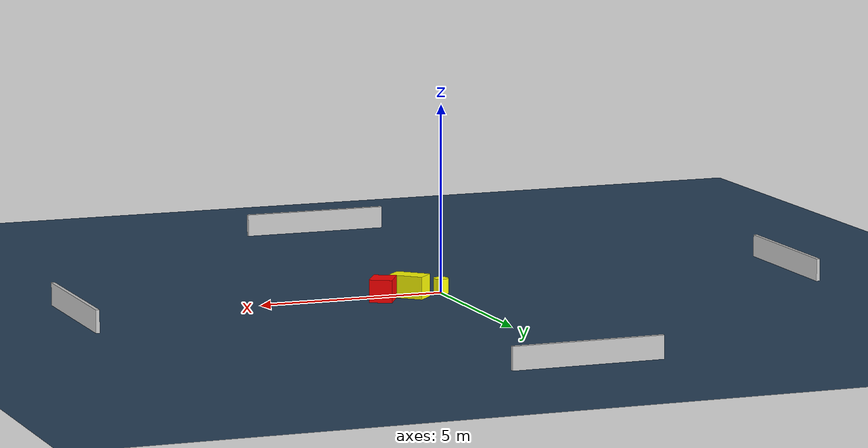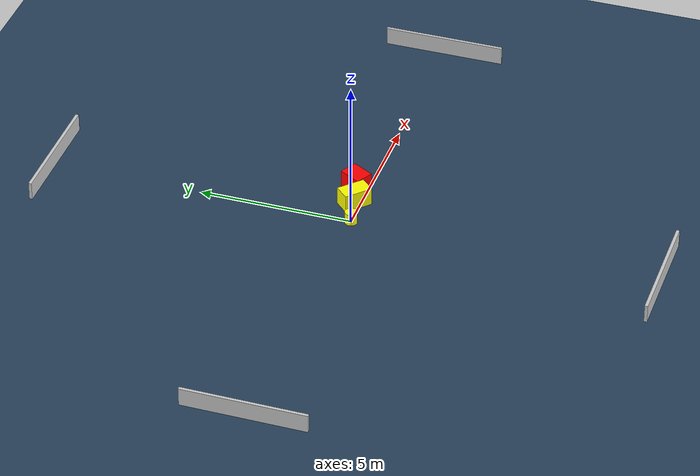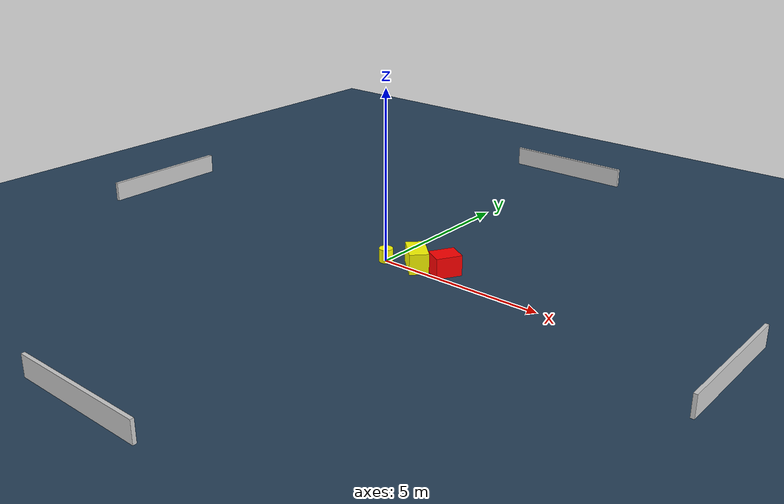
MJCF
<?xml version="1.0" ?>
<mujoco model="generated_environment">
  <option timestep="0.01" integrator="RK4" cone="elliptic"/>
  <default>
    <geom density="1"/>
  </default>
  <asset>
    <texture builtin="gradient" height="3072" name="skybox" rgb1="0.3 0.5 0.7" rgb2="0 0 0" type="skybox" width="512"/>
    <texture builtin="checker" height="300" name="groundplane" rgb1="0.2 0.3 0.4" rgb2="0.1 0.2 0.3" type="2d" width="300"/>
    <material name="groundplane" reflectance="0.2" texrepeat="5 5" texture="groundplane"/>
  </asset>
  <worldbody>
    <light dir="0 0 -1" directional="true" pos="0 0 1.5"/>
    <geom condim="3" friction="0.5 0.005 0.001" material="groundplane" name="floor" pos="0 0 0" size="0 0 0.05" type="plane"/>
    <body name="walls">
      <geom name="wall_1" condim="4" pos="-10.0 0.0 0.3" rgba="0.800000011920929 0.800000011920929 0.800000011920929 1.0" size="0.05 2.0 0.3" type="box"/>
      <geom name="wall_2" condim="4" pos="10.0 0.0 0.3" rgba="0.800000011920929 0.800000011920929 0.800000011920929 1.0" size="0.05 2.0 0.3" type="box"/>
      <geom name="wall_3" condim="4" pos="0.0 -10.0 0.3" rgba="0.800000011920929 0.800000011920929 0.800000011920929 1.0" size="2.0 0.05 0.3" type="box"/>
      <geom name="wall_4" condim="4" pos="0.0 10.0 0.3" rgba="0.800000011920929 0.800000011920929 0.800000011920929 1.0" size="2.0 0.05 0.3" type="box"/>
    </body>
    <body name="robot">
      <joint name="joint_x" type="slide" pos="0 0 0" axis="1 0 0"/>
      <joint name="joint_y" type="slide" pos="0 0 0" axis="0 1 0"/>
      <geom name="robot" type="cylinder" pos="0.0 0.0 0.2" size="0.2 0.2 0.0" mass="5.0" friction="1.0 0.005 0.0001" condim="4" rgba="1.0 1.0 0.0 1.0"/>
    </body>
    <body name="obstacle_1_movable">
      <geom name="obstacle_1_movable" condim="4" pos="0.961032620270547 0.19802326549639673 0.3" euler="0 0 316.3563853190388" friction="0.0 0.005 0.001" rgba="1.0 1.0 0.0 1.0" size="0.4688793972244559 0.27612740532850505 0.3" type="box" mass="0.1"/>
      <joint type="free"/>
    </body>
    <body name="obstacle_2_static">
      <geom name="obstacle_2_static" condim="4" pos="1.7820031606934266 0.40954333037568813 0.3" euler="0 0 150.57653880023878" friction="0.0 0.005 0.001" rgba="1.0 0.0 0.0 1.0" size="0.30326738193593683 0.38035589007147425 0.3" type="box"/>
    </body>
  </worldbody>
  <actuator>
    <motor name="actuator_x" joint="joint_x" gear="1" ctrlrange="-1 1"/>
    <motor name="actuator_y" joint="joint_y" gear="1" ctrlrange="-1 1"/>
  </actuator>
</mujoco>
